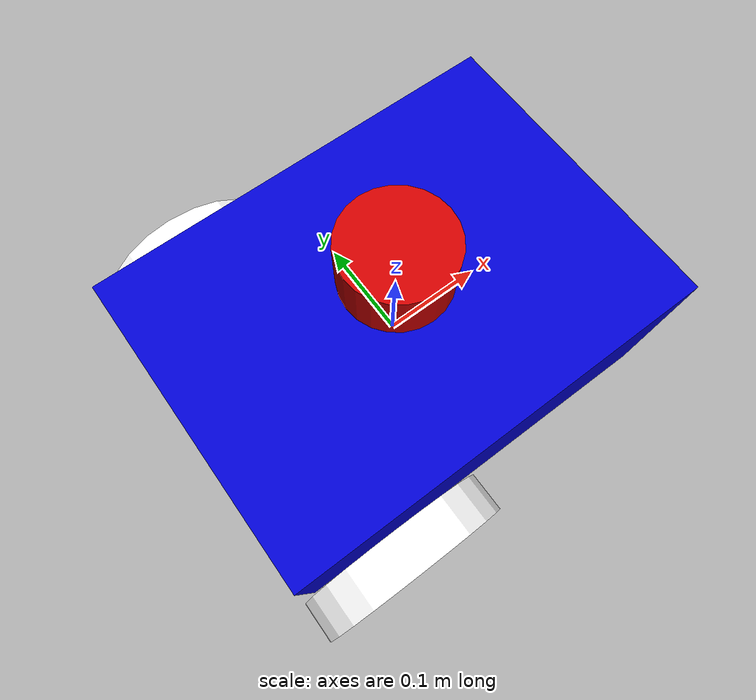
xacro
<?xml version="1.0"?>
<robot name="motor_drive" xmlns:xacro="http://www.ros.org/wiki/xacro">

  <material name="blue">
    <color rgba="0 0 0.8 1"/>
  </material>

  <material name="white">
    <color rgba="1 1 1 1"/>
  </material>

    <!-- Define some commonly used intertial properties  -->
  <xacro:macro name="box_inertia" params="m w h d">
    <inertial>
      <origin xyz="0 0 0" rpy="${pi/2} 0 ${pi/2}"/>
      <mass value="${m}"/>
      <inertia ixx="${(m/12) * (h*h + d*d)}" ixy="0.0" ixz="0.0" iyy="${(m/12) * (w*w + d*d)}" iyz="0.0" izz="${(m/12) * (w*w + h*h)}"/>
    </inertial>
  </xacro:macro>

  <xacro:macro name="cylinder_inertia" params="m r h">
    <inertial>
      <origin xyz="0 0 0" rpy="${pi/2} 0 0" />
      <mass value="${m}"/>
      <inertia ixx="${(m/12) * (3*r*r + h*h)}" ixy = "0" ixz = "0" iyy="${(m/12) * (3*r*r + h*h)}" iyz = "0" izz="${(m/2) * (r*r)}"/>
    </inertial>
  </xacro:macro>

  <xacro:macro name="sphere_inertia" params="m r">
    <inertial>
      <mass value="${m}"/>
      <inertia ixx="${(2/5) * m * (r*r)}" ixy="0.0" ixz="0.0" iyy="${(2/5) * m * (r*r)}" iyz="0.0" izz="${(2/5) * m * (r*r)}"/>
    </inertial>
  </xacro:macro>

  <!-- Define robot constants -->
  <xacro:property name="base_width" value="0.31"/>
  <xacro:property name="base_length" value="0.42"/>
  <xacro:property name="base_height" value="0.18"/>

  <xacro:property name="wheel_radius" value="0.10"/>
  <xacro:property name="wheel_width" value="0.04"/>
  <xacro:property name="wheel_ygap" value="0.025"/>
  <xacro:property name="wheel_zoff" value="0.05"/>
  <xacro:property name="wheel_xoff" value="0.12"/>

  <xacro:property name="caster_xoff" value="0.14"/>

<!-- Robot Base -->
  <link name="base_link">
    <visual>
      <geometry>
        <box size="${base_length} ${base_width} ${base_height}"/>
      </geometry>
      <material name="blue"/>
    </visual>

    <collision>
      <geometry>
        <box size="${base_length} ${base_width} ${base_height}"/>
      </geometry>
    </collision>

    <xacro:box_inertia m="15" w="${base_width}" d="${base_length}" h="${base_height}"/>
  </link>

  <!-- Robot Footprint -->
  <link name="base_footprint">
    <xacro:box_inertia m="0" w="0" d="0" h="0"/>
  </link>

  <joint name="base_joint" type="fixed">
    <parent link="base_link"/>
    <child link="base_footprint"/>
    <origin xyz="0.0 0.0 ${-(wheel_radius+wheel_zoff)}" rpy="0 0 0"/>
  </joint>

  <!-- Wheels -->
  <xacro:macro name="wheel" params="prefix x_reflect y_reflect">
    <link name="joint_link_${prefix}">
      <visual>
        <origin xyz="0 0 0" rpy="${pi/2} 0 0"/>
        <geometry>
          <cylinder radius="${wheel_radius}" length="${wheel_width}"/>
        </geometry>
        <material name="white"/>
      </visual>

      <collision>
        <origin xyz="0 0 0" rpy="${pi/2} 0 0"/>
        <geometry>
          <cylinder radius="${wheel_radius}" length="${wheel_width}"/>
        </geometry>
      </collision>

      <xacro:cylinder_inertia m="0.5" r="${wheel_radius}" h="${wheel_width}"/>
    </link>

    <joint name="joint_${prefix}" type="continuous">
      <parent link="base_link"/>
      <child link="joint_link_${prefix}"/>
      <origin xyz="${x_reflect*wheel_xoff} ${y_reflect*(base_width/2+wheel_ygap)} ${-wheel_zoff}" rpy="0 0 0"/>
      <axis xyz="0 1 0"/>
      <dynamics damping="10" friction="5"/>
    </joint>
  </xacro:macro>

  <xacro:wheel prefix="1" x_reflect="-1" y_reflect="1" />
  <xacro:wheel prefix="2" x_reflect="-1" y_reflect="-1" />

  <link name="front_caster">
    <visual>
      <geometry>
        <sphere radius="${(wheel_radius+wheel_zoff-(base_height/2))}"/>
      </geometry>
      <material name="white"/>
    </visual>

    <collision>
      <origin xyz="0 0 0" rpy="0 0 0"/>
      <geometry>
        <sphere radius="${(wheel_radius+wheel_zoff-(base_height/2))}"/>
      </geometry>
    </collision>

    <xacro:sphere_inertia m="5" r="${(wheel_radius+wheel_zoff-(base_height/2))}"/>
  </link>

  <joint name="caster_joint" type="fixed">
    <parent link="base_link"/>
    <child link="front_caster"/>
    <origin xyz="${caster_xoff} 0.0 ${-(base_height/2)}" rpy="0 0 0"/>
  </joint>

  <gazebo reference="front_caster">
      <material>Gazebo/Black</material>
      <mu1 value="0.00001"/>
      <mu2 value="0.00001"/>
  </gazebo>

  <gazebo reference="joint_link_1">
      <material>Gazebo/Red</material>
      <mu1 value="0.00001"/>
      <mu2 value="0.00001"/>
  </gazebo>

  <gazebo reference="joint_link_2">
      <material>Gazebo/Red</material>
      <mu1 value="0.00001"/>
      <mu2 value="0.00001"/>
  </gazebo>

  <!-- ****************************** LIDAR *****************************    -->
  <link name="lidar_link">
    <inertial>
      <origin xyz="0 0 0" rpy="0 0 0"/>
      <mass value="0.125"/>
      <inertia ixx="0.001" ixy="0" ixz="0" iyy="0.001" iyz="0" izz="0.001" />
    </inertial>
    <collision>
      <origin xyz="0 0 0" rpy="0 0 0"/>
      <geometry>
        <cylinder radius="0.0508" length="0.055"/>
      </geometry>
    </collision>
    <visual>
      <origin xyz="0 0 0" rpy="0 0 0"/>
      <geometry>
        <cylinder radius="0.0508" length="0.055"/>
      </geometry>
      <material name="lidar_visual">
        <color rgba="0.8 0 0 1"/>
        <ambient>0.0 0.0 0.0 1.0</ambient>
        <diffuse>0.0 0.0 0.0 1.0</diffuse>
        <specular>0.0 0.0 0.0 1.0</specular>
        <emissive>0.0 0.0 0.0 1.0</emissive>
      </material>
    </visual>
  </link>

  <joint name="lidar_joint" type="fixed">
    <parent link="base_link"/>
    <child link="lidar_link"/>
    <origin xyz="0 0 0.14" rpy="0 0 0"/>
  </joint>

  <xacro:include filename="$(find ethercat_diff_drive)/description/ros2_control/motor_diff_drive.ros2_control.xacro" />
  <xacro:motor_drive/>
</robot>
